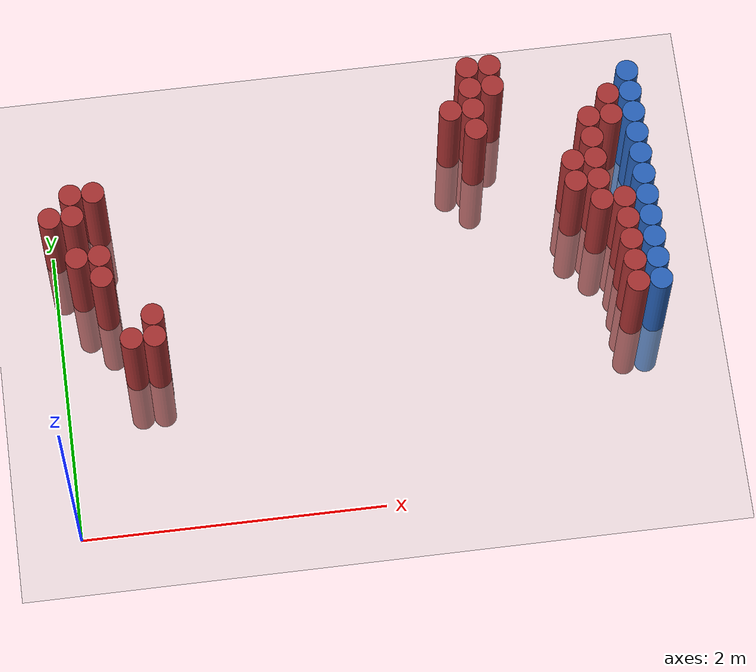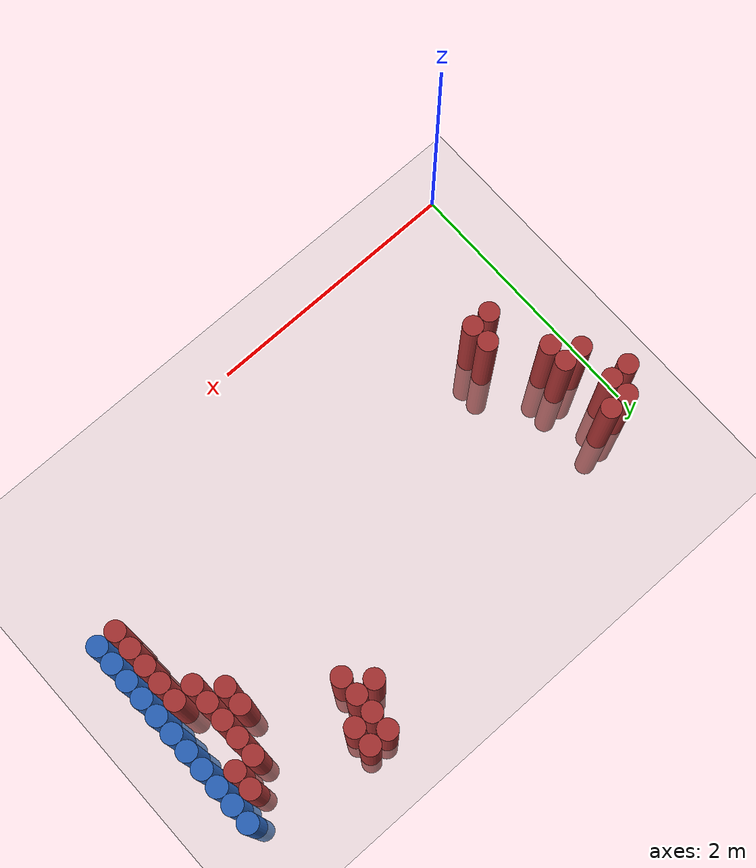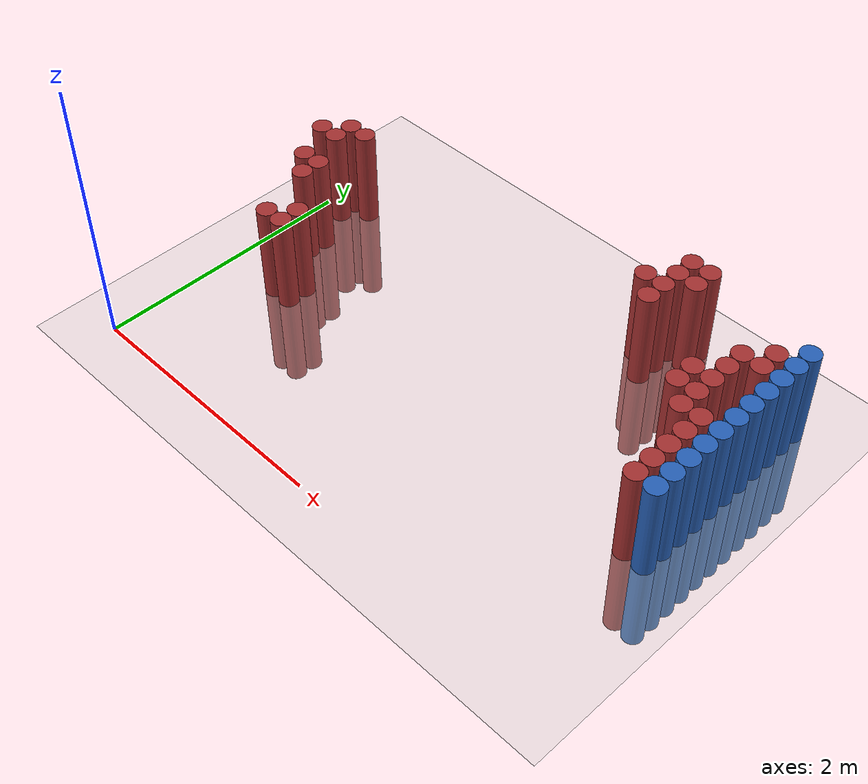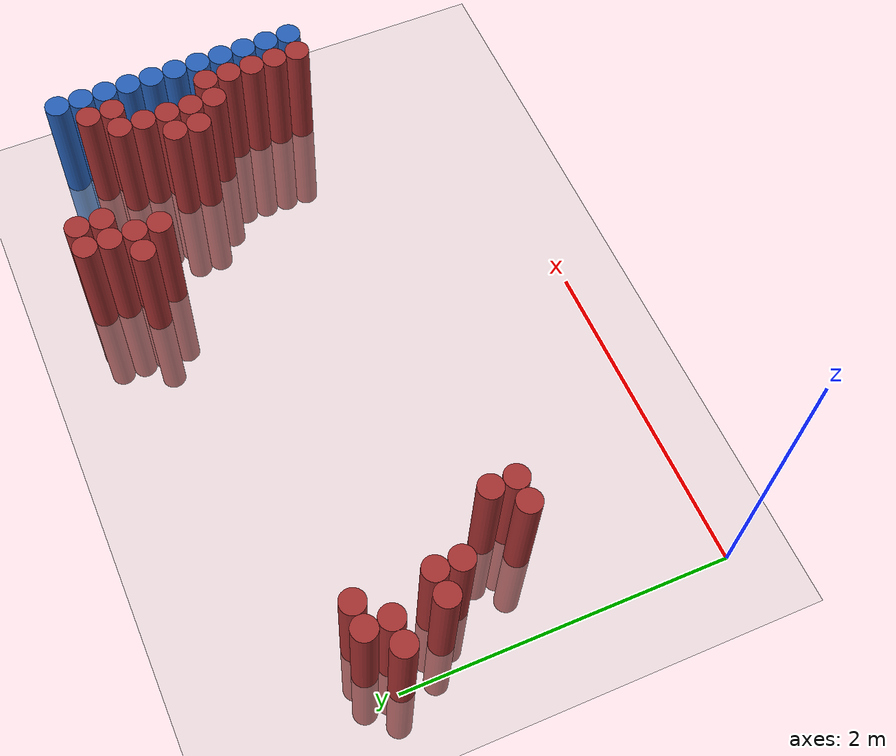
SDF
<sdf version="1.6">
 <world name="default">
  <model name="ground_plane">
   <static>1</static>
   <link name="link">
    <collision name="collision">
     <geometry><plane><normal>0 0 1</normal><size>100 100</size></plane></geometry>
     <surface><friction><ode><mu>100</mu><mu2>50</mu2></ode></friction></surface>
    </collision>
    <visual name="visual">
     <cast_shadows>0</cast_shadows>
     <geometry><plane><normal>0 0 1</normal><size>100 100</size></plane></geometry>
     <material>
      <script><uri>file://media/materials/scripts/gazebo.material</uri><name>Gazebo/Grey</name></script>
     </material>
    </visual>
   </link>
  </model>
  <model name="unit_cylinder_128">
   <static>1</static>
   <pose>3.925000 1.075000 0.000000 0.000000 0.000000 0.000000</pose>
   <link name="link">
    <inertial>
     <mass>1</mass>
     <inertia><ixx>0.145833</ixx><ixy>0</ixy><ixz>0</ixz><iyy>0.145833</iyy><iyz>0</iyz><izz>0.125</izz></inertia>
    </inertial>
    <collision name="collision">
     <geometry><cylinder><radius>0.075000</radius><length>1.5</length></cylinder></geometry>
    </collision>
    <visual name="visual">
     <geometry><cylinder><radius>0.075000</radius><length>1.5</length></cylinder></geometry>
     <material>
      <ambient>0.152000 0.379000 0.720000 1</ambient>
      <diffuse>0.152000 0.379000 0.720000 1</diffuse>
     </material>
     <material>
      <script><name>Gazebo/Grey</name><uri>file://media/materials/scripts/gazebo.material</uri></script>
     </material>
    </visual>
   </link>
  </model>
  <model name="unit_cylinder_130">
   <static>1</static>
   <pose>3.925000 1.225000 0.000000 0.000000 0.000000 0.000000</pose>
   <link name="link">
    <inertial>
     <mass>1</mass>
     <inertia><ixx>0.145833</ixx><ixy>0</ixy><ixz>0</ixz><iyy>0.145833</iyy><iyz>0</iyz><izz>0.125</izz></inertia>
    </inertial>
    <collision name="collision">
     <geometry><cylinder><radius>0.075000</radius><length>1.5</length></cylinder></geometry>
    </collision>
    <visual name="visual">
     <geometry><cylinder><radius>0.075000</radius><length>1.5</length></cylinder></geometry>
     <material>
      <ambient>0.152000 0.379000 0.720000 1</ambient>
      <diffuse>0.152000 0.379000 0.720000 1</diffuse>
     </material>
     <material>
      <script><name>Gazebo/Grey</name><uri>file://media/materials/scripts/gazebo.material</uri></script>
     </material>
    </visual>
   </link>
  </model>
  <model name="unit_cylinder_132">
   <static>1</static>
   <pose>3.925000 1.375000 0.000000 0.000000 0.000000 0.000000</pose>
   <link name="link">
    <inertial>
     <mass>1</mass>
     <inertia><ixx>0.145833</ixx><ixy>0</ixy><ixz>0</ixz><iyy>0.145833</iyy><iyz>0</iyz><izz>0.125</izz></inertia>
    </inertial>
    <collision name="collision">
     <geometry><cylinder><radius>0.075000</radius><length>1.5</length></cylinder></geometry>
    </collision>
    <visual name="visual">
     <geometry><cylinder><radius>0.075000</radius><length>1.5</length></cylinder></geometry>
     <material>
      <ambient>0.152000 0.379000 0.720000 1</ambient>
      <diffuse>0.152000 0.379000 0.720000 1</diffuse>
     </material>
     <material>
      <script><name>Gazebo/Grey</name><uri>file://media/materials/scripts/gazebo.material</uri></script>
     </material>
    </visual>
   </link>
  </model>
  <model name="unit_cylinder_134">
   <static>1</static>
   <pose>3.925000 1.525000 0.000000 0.000000 0.000000 0.000000</pose>
   <link name="link">
    <inertial>
     <mass>1</mass>
     <inertia><ixx>0.145833</ixx><ixy>0</ixy><ixz>0</ixz><iyy>0.145833</iyy><iyz>0</iyz><izz>0.125</izz></inertia>
    </inertial>
    <collision name="collision">
     <geometry><cylinder><radius>0.075000</radius><length>1.5</length></cylinder></geometry>
    </collision>
    <visual name="visual">
     <geometry><cylinder><radius>0.075000</radius><length>1.5</length></cylinder></geometry>
     <material>
      <ambient>0.152000 0.379000 0.720000 1</ambient>
      <diffuse>0.152000 0.379000 0.720000 1</diffuse>
     </material>
     <material>
      <script><name>Gazebo/Grey</name><uri>file://media/materials/scripts/gazebo.material</uri></script>
     </material>
    </visual>
   </link>
  </model>
  <model name="unit_cylinder_136">
   <static>1</static>
   <pose>3.925000 1.675000 0.000000 0.000000 0.000000 0.000000</pose>
   <link name="link">
    <inertial>
     <mass>1</mass>
     <inertia><ixx>0.145833</ixx><ixy>0</ixy><ixz>0</ixz><iyy>0.145833</iyy><iyz>0</iyz><izz>0.125</izz></inertia>
    </inertial>
    <collision name="collision">
     <geometry><cylinder><radius>0.075000</radius><length>1.5</length></cylinder></geometry>
    </collision>
    <visual name="visual">
     <geometry><cylinder><radius>0.075000</radius><length>1.5</length></cylinder></geometry>
     <material>
      <ambient>0.152000 0.379000 0.720000 1</ambient>
      <diffuse>0.152000 0.379000 0.720000 1</diffuse>
     </material>
     <material>
      <script><name>Gazebo/Grey</name><uri>file://media/materials/scripts/gazebo.material</uri></script>
     </material>
    </visual>
   </link>
  </model>
  <model name="unit_cylinder_138">
   <static>1</static>
   <pose>3.925000 1.825000 0.000000 0.000000 0.000000 0.000000</pose>
   <link name="link">
    <inertial>
     <mass>1</mass>
     <inertia><ixx>0.145833</ixx><ixy>0</ixy><ixz>0</ixz><iyy>0.145833</iyy><iyz>0</iyz><izz>0.125</izz></inertia>
    </inertial>
    <collision name="collision">
     <geometry><cylinder><radius>0.075000</radius><length>1.5</length></cylinder></geometry>
    </collision>
    <visual name="visual">
     <geometry><cylinder><radius>0.075000</radius><length>1.5</length></cylinder></geometry>
     <material>
      <ambient>0.152000 0.379000 0.720000 1</ambient>
      <diffuse>0.152000 0.379000 0.720000 1</diffuse>
     </material>
     <material>
      <script><name>Gazebo/Grey</name><uri>file://media/materials/scripts/gazebo.material</uri></script>
     </material>
    </visual>
   </link>
  </model>
  <model name="unit_cylinder_140">
   <static>1</static>
   <pose>3.925000 1.975000 0.000000 0.000000 0.000000 0.000000</pose>
   <link name="link">
    <inertial>
     <mass>1</mass>
     <inertia><ixx>0.145833</ixx><ixy>0</ixy><ixz>0</ixz><iyy>0.145833</iyy><iyz>0</iyz><izz>0.125</izz></inertia>
    </inertial>
    <collision name="collision">
     <geometry><cylinder><radius>0.075000</radius><length>1.5</length></cylinder></geometry>
    </collision>
    <visual name="visual">
     <geometry><cylinder><radius>0.075000</radius><length>1.5</length></cylinder></geometry>
     <material>
      <ambient>0.152000 0.379000 0.720000 1</ambient>
      <diffuse>0.152000 0.379000 0.720000 1</diffuse>
     </material>
     <material>
      <script><name>Gazebo/Grey</name><uri>file://media/materials/scripts/gazebo.material</uri></script>
     </material>
    </visual>
   </link>
  </model>
  <model name="unit_cylinder_142">
   <static>1</static>
   <pose>3.925000 2.125000 0.000000 0.000000 0.000000 0.000000</pose>
   <link name="link">
    <inertial>
     <mass>1</mass>
     <inertia><ixx>0.145833</ixx><ixy>0</ixy><ixz>0</ixz><iyy>0.145833</iyy><iyz>0</iyz><izz>0.125</izz></inertia>
    </inertial>
    <collision name="collision">
     <geometry><cylinder><radius>0.075000</radius><length>1.5</length></cylinder></geometry>
    </collision>
    <visual name="visual">
     <geometry><cylinder><radius>0.075000</radius><length>1.5</length></cylinder></geometry>
     <material>
      <ambient>0.152000 0.379000 0.720000 1</ambient>
      <diffuse>0.152000 0.379000 0.720000 1</diffuse>
     </material>
     <material>
      <script><name>Gazebo/Grey</name><uri>file://media/materials/scripts/gazebo.material</uri></script>
     </material>
    </visual>
   </link>
  </model>
  <model name="unit_cylinder_144">
   <static>1</static>
   <pose>3.925000 2.275000 0.000000 0.000000 0.000000 0.000000</pose>
   <link name="link">
    <inertial>
     <mass>1</mass>
     <inertia><ixx>0.145833</ixx><ixy>0</ixy><ixz>0</ixz><iyy>0.145833</iyy><iyz>0</iyz><izz>0.125</izz></inertia>
    </inertial>
    <collision name="collision">
     <geometry><cylinder><radius>0.075000</radius><length>1.5</length></cylinder></geometry>
    </collision>
    <visual name="visual">
     <geometry><cylinder><radius>0.075000</radius><length>1.5</length></cylinder></geometry>
     <material>
      <ambient>0.152000 0.379000 0.720000 1</ambient>
      <diffuse>0.152000 0.379000 0.720000 1</diffuse>
     </material>
     <material>
      <script><name>Gazebo/Grey</name><uri>file://media/materials/scripts/gazebo.material</uri></script>
     </material>
    </visual>
   </link>
  </model>
  <model name="unit_cylinder_146">
   <static>1</static>
   <pose>3.925000 2.425000 0.000000 0.000000 0.000000 0.000000</pose>
   <link name="link">
    <inertial>
     <mass>1</mass>
     <inertia><ixx>0.145833</ixx><ixy>0</ixy><ixz>0</ixz><iyy>0.145833</iyy><iyz>0</iyz><izz>0.125</izz></inertia>
    </inertial>
    <collision name="collision">
     <geometry><cylinder><radius>0.075000</radius><length>1.5</length></cylinder></geometry>
    </collision>
    <visual name="visual">
     <geometry><cylinder><radius>0.075000</radius><length>1.5</length></cylinder></geometry>
     <material>
      <ambient>0.152000 0.379000 0.720000 1</ambient>
      <diffuse>0.152000 0.379000 0.720000 1</diffuse>
     </material>
     <material>
      <script><name>Gazebo/Grey</name><uri>file://media/materials/scripts/gazebo.material</uri></script>
     </material>
    </visual>
   </link>
  </model>
  <model name="unit_cylinder_148">
   <static>1</static>
   <pose>3.925000 2.575000 0.000000 0.000000 0.000000 0.000000</pose>
   <link name="link">
    <inertial>
     <mass>1</mass>
     <inertia><ixx>0.145833</ixx><ixy>0</ixy><ixz>0</ixz><iyy>0.145833</iyy><iyz>0</iyz><izz>0.125</izz></inertia>
    </inertial>
    <collision name="collision">
     <geometry><cylinder><radius>0.075000</radius><length>1.5</length></cylinder></geometry>
    </collision>
    <visual name="visual">
     <geometry><cylinder><radius>0.075000</radius><length>1.5</length></cylinder></geometry>
     <material>
      <ambient>0.152000 0.379000 0.720000 1</ambient>
      <diffuse>0.152000 0.379000 0.720000 1</diffuse>
     </material>
     <material>
      <script><name>Gazebo/Grey</name><uri>file://media/materials/scripts/gazebo.material</uri></script>
     </material>
    </visual>
   </link>
  </model>
  <model name="unit_cylinder_444">
   <static>1</static>
   <pose>0.025000 1.975000 0.000000 0.000000 0.000000 0.000000</pose>
   <link name="link">
    <inertial>
     <mass>1</mass>
     <inertia><ixx>0.145833</ixx><ixy>0</ixy><ixz>0</ixz><iyy>0.145833</iyy><iyz>0</iyz><izz>0.125</izz></inertia>
    </inertial>
    <collision name="collision">
     <geometry><cylinder><radius>0.075000</radius><length>1.5</length></cylinder></geometry>
    </collision>
    <visual name="visual">
     <geometry><cylinder><radius>0.075000</radius><length>1.5</length></cylinder></geometry>
     <material>
      <ambient>0.648000 0.192000 0.192000 1</ambient>
      <diffuse>0.648000 0.192000 0.192000 1</diffuse>
     </material>
     <material>
      <script><name>Gazebo/Grey</name><uri>file://media/materials/scripts/gazebo.material</uri></script>
     </material>
    </visual>
   </link>
  </model>
  <model name="unit_cylinder_450">
   <static>1</static>
   <pose>0.175000 1.675000 0.000000 0.000000 0.000000 0.000000</pose>
   <link name="link">
    <inertial>
     <mass>1</mass>
     <inertia><ixx>0.145833</ixx><ixy>0</ixy><ixz>0</ixz><iyy>0.145833</iyy><iyz>0</iyz><izz>0.125</izz></inertia>
    </inertial>
    <collision name="collision">
     <geometry><cylinder><radius>0.075000</radius><length>1.5</length></cylinder></geometry>
    </collision>
    <visual name="visual">
     <geometry><cylinder><radius>0.075000</radius><length>1.5</length></cylinder></geometry>
     <material>
      <ambient>0.648000 0.192000 0.192000 1</ambient>
      <diffuse>0.648000 0.192000 0.192000 1</diffuse>
     </material>
     <material>
      <script><name>Gazebo/Grey</name><uri>file://media/materials/scripts/gazebo.material</uri></script>
     </material>
    </visual>
   </link>
  </model>
  <model name="unit_cylinder_451">
   <static>1</static>
   <pose>0.175000 1.975000 0.000000 0.000000 0.000000 0.000000</pose>
   <link name="link">
    <inertial>
     <mass>1</mass>
     <inertia><ixx>0.145833</ixx><ixy>0</ixy><ixz>0</ixz><iyy>0.145833</iyy><iyz>0</iyz><izz>0.125</izz></inertia>
    </inertial>
    <collision name="collision">
     <geometry><cylinder><radius>0.075000</radius><length>1.5</length></cylinder></geometry>
    </collision>
    <visual name="visual">
     <geometry><cylinder><radius>0.075000</radius><length>1.5</length></cylinder></geometry>
     <material>
      <ambient>0.648000 0.192000 0.192000 1</ambient>
      <diffuse>0.648000 0.192000 0.192000 1</diffuse>
     </material>
     <material>
      <script><name>Gazebo/Grey</name><uri>file://media/materials/scripts/gazebo.material</uri></script>
     </material>
    </visual>
   </link>
  </model>
  <model name="unit_cylinder_452">
   <static>1</static>
   <pose>0.175000 2.125000 0.000000 0.000000 0.000000 0.000000</pose>
   <link name="link">
    <inertial>
     <mass>1</mass>
     <inertia><ixx>0.145833</ixx><ixy>0</ixy><ixz>0</ixz><iyy>0.145833</iyy><iyz>0</iyz><izz>0.125</izz></inertia>
    </inertial>
    <collision name="collision">
     <geometry><cylinder><radius>0.075000</radius><length>1.5</length></cylinder></geometry>
    </collision>
    <visual name="visual">
     <geometry><cylinder><radius>0.075000</radius><length>1.5</length></cylinder></geometry>
     <material>
      <ambient>0.648000 0.192000 0.192000 1</ambient>
      <diffuse>0.648000 0.192000 0.192000 1</diffuse>
     </material>
     <material>
      <script><name>Gazebo/Grey</name><uri>file://media/materials/scripts/gazebo.material</uri></script>
     </material>
    </visual>
   </link>
  </model>
  <model name="unit_cylinder_454">
   <static>1</static>
   <pose>0.325000 1.525000 0.000000 0.000000 0.000000 0.000000</pose>
   <link name="link">
    <inertial>
     <mass>1</mass>
     <inertia><ixx>0.145833</ixx><ixy>0</ixy><ixz>0</ixz><iyy>0.145833</iyy><iyz>0</iyz><izz>0.125</izz></inertia>
    </inertial>
    <collision name="collision">
     <geometry><cylinder><radius>0.075000</radius><length>1.5</length></cylinder></geometry>
    </collision>
    <visual name="visual">
     <geometry><cylinder><radius>0.075000</radius><length>1.5</length></cylinder></geometry>
     <material>
      <ambient>0.648000 0.192000 0.192000 1</ambient>
      <diffuse>0.648000 0.192000 0.192000 1</diffuse>
     </material>
     <material>
      <script><name>Gazebo/Grey</name><uri>file://media/materials/scripts/gazebo.material</uri></script>
     </material>
    </visual>
   </link>
  </model>
  <model name="unit_cylinder_455">
   <static>1</static>
   <pose>0.325000 1.675000 0.000000 0.000000 0.000000 0.000000</pose>
   <link name="link">
    <inertial>
     <mass>1</mass>
     <inertia><ixx>0.145833</ixx><ixy>0</ixy><ixz>0</ixz><iyy>0.145833</iyy><iyz>0</iyz><izz>0.125</izz></inertia>
    </inertial>
    <collision name="collision">
     <geometry><cylinder><radius>0.075000</radius><length>1.5</length></cylinder></geometry>
    </collision>
    <visual name="visual">
     <geometry><cylinder><radius>0.075000</radius><length>1.5</length></cylinder></geometry>
     <material>
      <ambient>0.648000 0.192000 0.192000 1</ambient>
      <diffuse>0.648000 0.192000 0.192000 1</diffuse>
     </material>
     <material>
      <script><name>Gazebo/Grey</name><uri>file://media/materials/scripts/gazebo.material</uri></script>
     </material>
    </visual>
   </link>
  </model>
  <model name="unit_cylinder_456">
   <static>1</static>
   <pose>0.325000 2.125000 0.000000 0.000000 0.000000 0.000000</pose>
   <link name="link">
    <inertial>
     <mass>1</mass>
     <inertia><ixx>0.145833</ixx><ixy>0</ixy><ixz>0</ixz><iyy>0.145833</iyy><iyz>0</iyz><izz>0.125</izz></inertia>
    </inertial>
    <collision name="collision">
     <geometry><cylinder><radius>0.075000</radius><length>1.5</length></cylinder></geometry>
    </collision>
    <visual name="visual">
     <geometry><cylinder><radius>0.075000</radius><length>1.5</length></cylinder></geometry>
     <material>
      <ambient>0.648000 0.192000 0.192000 1</ambient>
      <diffuse>0.648000 0.192000 0.192000 1</diffuse>
     </material>
     <material>
      <script><name>Gazebo/Grey</name><uri>file://media/materials/scripts/gazebo.material</uri></script>
     </material>
    </visual>
   </link>
  </model>
  <model name="unit_cylinder_461">
   <static>1</static>
   <pose>0.475000 1.075000 0.000000 0.000000 0.000000 0.000000</pose>
   <link name="link">
    <inertial>
     <mass>1</mass>
     <inertia><ixx>0.145833</ixx><ixy>0</ixy><ixz>0</ixz><iyy>0.145833</iyy><iyz>0</iyz><izz>0.125</izz></inertia>
    </inertial>
    <collision name="collision">
     <geometry><cylinder><radius>0.075000</radius><length>1.5</length></cylinder></geometry>
    </collision>
    <visual name="visual">
     <geometry><cylinder><radius>0.075000</radius><length>1.5</length></cylinder></geometry>
     <material>
      <ambient>0.648000 0.192000 0.192000 1</ambient>
      <diffuse>0.648000 0.192000 0.192000 1</diffuse>
     </material>
     <material>
      <script><name>Gazebo/Grey</name><uri>file://media/materials/scripts/gazebo.material</uri></script>
     </material>
    </visual>
   </link>
  </model>
  <model name="unit_cylinder_468">
   <static>1</static>
   <pose>0.625000 1.075000 0.000000 0.000000 0.000000 0.000000</pose>
   <link name="link">
    <inertial>
     <mass>1</mass>
     <inertia><ixx>0.145833</ixx><ixy>0</ixy><ixz>0</ixz><iyy>0.145833</iyy><iyz>0</iyz><izz>0.125</izz></inertia>
    </inertial>
    <collision name="collision">
     <geometry><cylinder><radius>0.075000</radius><length>1.5</length></cylinder></geometry>
    </collision>
    <visual name="visual">
     <geometry><cylinder><radius>0.075000</radius><length>1.5</length></cylinder></geometry>
     <material>
      <ambient>0.648000 0.192000 0.192000 1</ambient>
      <diffuse>0.648000 0.192000 0.192000 1</diffuse>
     </material>
     <material>
      <script><name>Gazebo/Grey</name><uri>file://media/materials/scripts/gazebo.material</uri></script>
     </material>
    </visual>
   </link>
  </model>
  <model name="unit_cylinder_469">
   <static>1</static>
   <pose>0.625000 1.225000 0.000000 0.000000 0.000000 0.000000</pose>
   <link name="link">
    <inertial>
     <mass>1</mass>
     <inertia><ixx>0.145833</ixx><ixy>0</ixy><ixz>0</ixz><iyy>0.145833</iyy><iyz>0</iyz><izz>0.125</izz></inertia>
    </inertial>
    <collision name="collision">
     <geometry><cylinder><radius>0.075000</radius><length>1.5</length></cylinder></geometry>
    </collision>
    <visual name="visual">
     <geometry><cylinder><radius>0.075000</radius><length>1.5</length></cylinder></geometry>
     <material>
      <ambient>0.648000 0.192000 0.192000 1</ambient>
      <diffuse>0.648000 0.192000 0.192000 1</diffuse>
     </material>
     <material>
      <script><name>Gazebo/Grey</name><uri>file://media/materials/scripts/gazebo.material</uri></script>
     </material>
    </visual>
   </link>
  </model>
  <model name="unit_cylinder_524">
   <static>1</static>
   <pose>2.725000 2.425000 0.000000 0.000000 0.000000 0.000000</pose>
   <link name="link">
    <inertial>
     <mass>1</mass>
     <inertia><ixx>0.145833</ixx><ixy>0</ixy><ixz>0</ixz><iyy>0.145833</iyy><iyz>0</iyz><izz>0.125</izz></inertia>
    </inertial>
    <collision name="collision">
     <geometry><cylinder><radius>0.075000</radius><length>1.5</length></cylinder></geometry>
    </collision>
    <visual name="visual">
     <geometry><cylinder><radius>0.075000</radius><length>1.5</length></cylinder></geometry>
     <material>
      <ambient>0.648000 0.192000 0.192000 1</ambient>
      <diffuse>0.648000 0.192000 0.192000 1</diffuse>
     </material>
     <material>
      <script><name>Gazebo/Grey</name><uri>file://media/materials/scripts/gazebo.material</uri></script>
     </material>
    </visual>
   </link>
  </model>
  <model name="unit_cylinder_531">
   <static>1</static>
   <pose>2.875000 2.275000 0.000000 0.000000 0.000000 0.000000</pose>
   <link name="link">
    <inertial>
     <mass>1</mass>
     <inertia><ixx>0.145833</ixx><ixy>0</ixy><ixz>0</ixz><iyy>0.145833</iyy><iyz>0</iyz><izz>0.125</izz></inertia>
    </inertial>
    <collision name="collision">
     <geometry><cylinder><radius>0.075000</radius><length>1.5</length></cylinder></geometry>
    </collision>
    <visual name="visual">
     <geometry><cylinder><radius>0.075000</radius><length>1.5</length></cylinder></geometry>
     <material>
      <ambient>0.648000 0.192000 0.192000 1</ambient>
      <diffuse>0.648000 0.192000 0.192000 1</diffuse>
     </material>
     <material>
      <script><name>Gazebo/Grey</name><uri>file://media/materials/scripts/gazebo.material</uri></script>
     </material>
    </visual>
   </link>
  </model>
  <model name="unit_cylinder_532">
   <static>1</static>
   <pose>2.875000 2.425000 0.000000 0.000000 0.000000 0.000000</pose>
   <link name="link">
    <inertial>
     <mass>1</mass>
     <inertia><ixx>0.145833</ixx><ixy>0</ixy><ixz>0</ixz><iyy>0.145833</iyy><iyz>0</iyz><izz>0.125</izz></inertia>
    </inertial>
    <collision name="collision">
     <geometry><cylinder><radius>0.075000</radius><length>1.5</length></cylinder></geometry>
    </collision>
    <visual name="visual">
     <geometry><cylinder><radius>0.075000</radius><length>1.5</length></cylinder></geometry>
     <material>
      <ambient>0.648000 0.192000 0.192000 1</ambient>
      <diffuse>0.648000 0.192000 0.192000 1</diffuse>
     </material>
     <material>
      <script><name>Gazebo/Grey</name><uri>file://media/materials/scripts/gazebo.material</uri></script>
     </material>
    </visual>
   </link>
  </model>
  <model name="unit_cylinder_533">
   <static>1</static>
   <pose>2.875000 2.575000 0.000000 0.000000 0.000000 0.000000</pose>
   <link name="link">
    <inertial>
     <mass>1</mass>
     <inertia><ixx>0.145833</ixx><ixy>0</ixy><ixz>0</ixz><iyy>0.145833</iyy><iyz>0</iyz><izz>0.125</izz></inertia>
    </inertial>
    <collision name="collision">
     <geometry><cylinder><radius>0.075000</radius><length>1.5</length></cylinder></geometry>
    </collision>
    <visual name="visual">
     <geometry><cylinder><radius>0.075000</radius><length>1.5</length></cylinder></geometry>
     <material>
      <ambient>0.648000 0.192000 0.192000 1</ambient>
      <diffuse>0.648000 0.192000 0.192000 1</diffuse>
     </material>
     <material>
      <script><name>Gazebo/Grey</name><uri>file://media/materials/scripts/gazebo.material</uri></script>
     </material>
    </visual>
   </link>
  </model>
  <model name="unit_cylinder_534">
   <static>1</static>
   <pose>2.875000 2.725000 0.000000 0.000000 0.000000 0.000000</pose>
   <link name="link">
    <inertial>
     <mass>1</mass>
     <inertia><ixx>0.145833</ixx><ixy>0</ixy><ixz>0</ixz><iyy>0.145833</iyy><iyz>0</iyz><izz>0.125</izz></inertia>
    </inertial>
    <collision name="collision">
     <geometry><cylinder><radius>0.075000</radius><length>1.5</length></cylinder></geometry>
    </collision>
    <visual name="visual">
     <geometry><cylinder><radius>0.075000</radius><length>1.5</length></cylinder></geometry>
     <material>
      <ambient>0.648000 0.192000 0.192000 1</ambient>
      <diffuse>0.648000 0.192000 0.192000 1</diffuse>
     </material>
     <material>
      <script><name>Gazebo/Grey</name><uri>file://media/materials/scripts/gazebo.material</uri></script>
     </material>
    </visual>
   </link>
  </model>
  <model name="unit_cylinder_537">
   <static>1</static>
   <pose>3.025000 2.575000 0.000000 0.000000 0.000000 0.000000</pose>
   <link name="link">
    <inertial>
     <mass>1</mass>
     <inertia><ixx>0.145833</ixx><ixy>0</ixy><ixz>0</ixz><iyy>0.145833</iyy><iyz>0</iyz><izz>0.125</izz></inertia>
    </inertial>
    <collision name="collision">
     <geometry><cylinder><radius>0.075000</radius><length>1.5</length></cylinder></geometry>
    </collision>
    <visual name="visual">
     <geometry><cylinder><radius>0.075000</radius><length>1.5</length></cylinder></geometry>
     <material>
      <ambient>0.648000 0.192000 0.192000 1</ambient>
      <diffuse>0.648000 0.192000 0.192000 1</diffuse>
     </material>
     <material>
      <script><name>Gazebo/Grey</name><uri>file://media/materials/scripts/gazebo.material</uri></script>
     </material>
    </visual>
   </link>
  </model>
  <model name="unit_cylinder_538">
   <static>1</static>
   <pose>3.025000 2.725000 0.000000 0.000000 0.000000 0.000000</pose>
   <link name="link">
    <inertial>
     <mass>1</mass>
     <inertia><ixx>0.145833</ixx><ixy>0</ixy><ixz>0</ixz><iyy>0.145833</iyy><iyz>0</iyz><izz>0.125</izz></inertia>
    </inertial>
    <collision name="collision">
     <geometry><cylinder><radius>0.075000</radius><length>1.5</length></cylinder></geometry>
    </collision>
    <visual name="visual">
     <geometry><cylinder><radius>0.075000</radius><length>1.5</length></cylinder></geometry>
     <material>
      <ambient>0.648000 0.192000 0.192000 1</ambient>
      <diffuse>0.648000 0.192000 0.192000 1</diffuse>
     </material>
     <material>
      <script><name>Gazebo/Grey</name><uri>file://media/materials/scripts/gazebo.material</uri></script>
     </material>
    </visual>
   </link>
  </model>
  <model name="unit_cylinder_546">
   <static>1</static>
   <pose>3.475000 1.825000 0.000000 0.000000 0.000000 0.000000</pose>
   <link name="link">
    <inertial>
     <mass>1</mass>
     <inertia><ixx>0.145833</ixx><ixy>0</ixy><ixz>0</ixz><iyy>0.145833</iyy><iyz>0</iyz><izz>0.125</izz></inertia>
    </inertial>
    <collision name="collision">
     <geometry><cylinder><radius>0.075000</radius><length>1.5</length></cylinder></geometry>
    </collision>
    <visual name="visual">
     <geometry><cylinder><radius>0.075000</radius><length>1.5</length></cylinder></geometry>
     <material>
      <ambient>0.648000 0.192000 0.192000 1</ambient>
      <diffuse>0.648000 0.192000 0.192000 1</diffuse>
     </material>
     <material>
      <script><name>Gazebo/Grey</name><uri>file://media/materials/scripts/gazebo.material</uri></script>
     </material>
    </visual>
   </link>
  </model>
  <model name="unit_cylinder_547">
   <static>1</static>
   <pose>3.475000 1.975000 0.000000 0.000000 0.000000 0.000000</pose>
   <link name="link">
    <inertial>
     <mass>1</mass>
     <inertia><ixx>0.145833</ixx><ixy>0</ixy><ixz>0</ixz><iyy>0.145833</iyy><iyz>0</iyz><izz>0.125</izz></inertia>
    </inertial>
    <collision name="collision">
     <geometry><cylinder><radius>0.075000</radius><length>1.5</length></cylinder></geometry>
    </collision>
    <visual name="visual">
     <geometry><cylinder><radius>0.075000</radius><length>1.5</length></cylinder></geometry>
     <material>
      <ambient>0.648000 0.192000 0.192000 1</ambient>
      <diffuse>0.648000 0.192000 0.192000 1</diffuse>
     </material>
     <material>
      <script><name>Gazebo/Grey</name><uri>file://media/materials/scripts/gazebo.material</uri></script>
     </material>
    </visual>
   </link>
  </model>
  <model name="unit_cylinder_556">
   <static>1</static>
   <pose>3.625000 1.675000 0.000000 0.000000 0.000000 0.000000</pose>
   <link name="link">
    <inertial>
     <mass>1</mass>
     <inertia><ixx>0.145833</ixx><ixy>0</ixy><ixz>0</ixz><iyy>0.145833</iyy><iyz>0</iyz><izz>0.125</izz></inertia>
    </inertial>
    <collision name="collision">
     <geometry><cylinder><radius>0.075000</radius><length>1.5</length></cylinder></geometry>
    </collision>
    <visual name="visual">
     <geometry><cylinder><radius>0.075000</radius><length>1.5</length></cylinder></geometry>
     <material>
      <ambient>0.648000 0.192000 0.192000 1</ambient>
      <diffuse>0.648000 0.192000 0.192000 1</diffuse>
     </material>
     <material>
      <script><name>Gazebo/Grey</name><uri>file://media/materials/scripts/gazebo.material</uri></script>
     </material>
    </visual>
   </link>
  </model>
  <model name="unit_cylinder_557">
   <static>1</static>
   <pose>3.625000 1.825000 0.000000 0.000000 0.000000 0.000000</pose>
   <link name="link">
    <inertial>
     <mass>1</mass>
     <inertia><ixx>0.145833</ixx><ixy>0</ixy><ixz>0</ixz><iyy>0.145833</iyy><iyz>0</iyz><izz>0.125</izz></inertia>
    </inertial>
    <collision name="collision">
     <geometry><cylinder><radius>0.075000</radius><length>1.5</length></cylinder></geometry>
    </collision>
    <visual name="visual">
     <geometry><cylinder><radius>0.075000</radius><length>1.5</length></cylinder></geometry>
     <material>
      <ambient>0.648000 0.192000 0.192000 1</ambient>
      <diffuse>0.648000 0.192000 0.192000 1</diffuse>
     </material>
     <material>
      <script><name>Gazebo/Grey</name><uri>file://media/materials/scripts/gazebo.material</uri></script>
     </material>
    </visual>
   </link>
  </model>
  <model name="unit_cylinder_558">
   <static>1</static>
   <pose>3.625000 1.975000 0.000000 0.000000 0.000000 0.000000</pose>
   <link name="link">
    <inertial>
     <mass>1</mass>
     <inertia><ixx>0.145833</ixx><ixy>0</ixy><ixz>0</ixz><iyy>0.145833</iyy><iyz>0</iyz><izz>0.125</izz></inertia>
    </inertial>
    <collision name="collision">
     <geometry><cylinder><radius>0.075000</radius><length>1.5</length></cylinder></geometry>
    </collision>
    <visual name="visual">
     <geometry><cylinder><radius>0.075000</radius><length>1.5</length></cylinder></geometry>
     <material>
      <ambient>0.648000 0.192000 0.192000 1</ambient>
      <diffuse>0.648000 0.192000 0.192000 1</diffuse>
     </material>
     <material>
      <script><name>Gazebo/Grey</name><uri>file://media/materials/scripts/gazebo.material</uri></script>
     </material>
    </visual>
   </link>
  </model>
  <model name="unit_cylinder_559">
   <static>1</static>
   <pose>3.625000 2.125000 0.000000 0.000000 0.000000 0.000000</pose>
   <link name="link">
    <inertial>
     <mass>1</mass>
     <inertia><ixx>0.145833</ixx><ixy>0</ixy><ixz>0</ixz><iyy>0.145833</iyy><iyz>0</iyz><izz>0.125</izz></inertia>
    </inertial>
    <collision name="collision">
     <geometry><cylinder><radius>0.075000</radius><length>1.5</length></cylinder></geometry>
    </collision>
    <visual name="visual">
     <geometry><cylinder><radius>0.075000</radius><length>1.5</length></cylinder></geometry>
     <material>
      <ambient>0.648000 0.192000 0.192000 1</ambient>
      <diffuse>0.648000 0.192000 0.192000 1</diffuse>
     </material>
     <material>
      <script><name>Gazebo/Grey</name><uri>file://media/materials/scripts/gazebo.material</uri></script>
     </material>
    </visual>
   </link>
  </model>
  <model name="unit_cylinder_560">
   <static>1</static>
   <pose>3.625000 2.275000 0.000000 0.000000 0.000000 0.000000</pose>
   <link name="link">
    <inertial>
     <mass>1</mass>
     <inertia><ixx>0.145833</ixx><ixy>0</ixy><ixz>0</ixz><iyy>0.145833</iyy><iyz>0</iyz><izz>0.125</izz></inertia>
    </inertial>
    <collision name="collision">
     <geometry><cylinder><radius>0.075000</radius><length>1.5</length></cylinder></geometry>
    </collision>
    <visual name="visual">
     <geometry><cylinder><radius>0.075000</radius><length>1.5</length></cylinder></geometry>
     <material>
      <ambient>0.648000 0.192000 0.192000 1</ambient>
      <diffuse>0.648000 0.192000 0.192000 1</diffuse>
     </material>
     <material>
      <script><name>Gazebo/Grey</name><uri>file://media/materials/scripts/gazebo.material</uri></script>
     </material>
    </visual>
   </link>
  </model>
  <model name="unit_cylinder_576">
   <static>1</static>
   <pose>3.775000 1.075000 0.000000 0.000000 0.000000 0.000000</pose>
   <link name="link">
    <inertial>
     <mass>1</mass>
     <inertia><ixx>0.145833</ixx><ixy>0</ixy><ixz>0</ixz><iyy>0.145833</iyy><iyz>0</iyz><izz>0.125</izz></inertia>
    </inertial>
    <collision name="collision">
     <geometry><cylinder><radius>0.075000</radius><length>1.5</length></cylinder></geometry>
    </collision>
    <visual name="visual">
     <geometry><cylinder><radius>0.075000</radius><length>1.5</length></cylinder></geometry>
     <material>
      <ambient>0.648000 0.192000 0.192000 1</ambient>
      <diffuse>0.648000 0.192000 0.192000 1</diffuse>
     </material>
     <material>
      <script><name>Gazebo/Grey</name><uri>file://media/materials/scripts/gazebo.material</uri></script>
     </material>
    </visual>
   </link>
  </model>
  <model name="unit_cylinder_577">
   <static>1</static>
   <pose>3.775000 1.225000 0.000000 0.000000 0.000000 0.000000</pose>
   <link name="link">
    <inertial>
     <mass>1</mass>
     <inertia><ixx>0.145833</ixx><ixy>0</ixy><ixz>0</ixz><iyy>0.145833</iyy><iyz>0</iyz><izz>0.125</izz></inertia>
    </inertial>
    <collision name="collision">
     <geometry><cylinder><radius>0.075000</radius><length>1.5</length></cylinder></geometry>
    </collision>
    <visual name="visual">
     <geometry><cylinder><radius>0.075000</radius><length>1.5</length></cylinder></geometry>
     <material>
      <ambient>0.648000 0.192000 0.192000 1</ambient>
      <diffuse>0.648000 0.192000 0.192000 1</diffuse>
     </material>
     <material>
      <script><name>Gazebo/Grey</name><uri>file://media/materials/scripts/gazebo.material</uri></script>
     </material>
    </visual>
   </link>
  </model>
  <model name="unit_cylinder_578">
   <static>1</static>
   <pose>3.775000 1.375000 0.000000 0.000000 0.000000 0.000000</pose>
   <link name="link">
    <inertial>
     <mass>1</mass>
     <inertia><ixx>0.145833</ixx><ixy>0</ixy><ixz>0</ixz><iyy>0.145833</iyy><iyz>0</iyz><izz>0.125</izz></inertia>
    </inertial>
    <collision name="collision">
     <geometry><cylinder><radius>0.075000</radius><length>1.5</length></cylinder></geometry>
    </collision>
    <visual name="visual">
     <geometry><cylinder><radius>0.075000</radius><length>1.5</length></cylinder></geometry>
     <material>
      <ambient>0.648000 0.192000 0.192000 1</ambient>
      <diffuse>0.648000 0.192000 0.192000 1</diffuse>
     </material>
     <material>
      <script><name>Gazebo/Grey</name><uri>file://media/materials/scripts/gazebo.material</uri></script>
     </material>
    </visual>
   </link>
  </model>
  <model name="unit_cylinder_579">
   <static>1</static>
   <pose>3.775000 1.525000 0.000000 0.000000 0.000000 0.000000</pose>
   <link name="link">
    <inertial>
     <mass>1</mass>
     <inertia><ixx>0.145833</ixx><ixy>0</ixy><ixz>0</ixz><iyy>0.145833</iyy><iyz>0</iyz><izz>0.125</izz></inertia>
    </inertial>
    <collision name="collision">
     <geometry><cylinder><radius>0.075000</radius><length>1.5</length></cylinder></geometry>
    </collision>
    <visual name="visual">
     <geometry><cylinder><radius>0.075000</radius><length>1.5</length></cylinder></geometry>
     <material>
      <ambient>0.648000 0.192000 0.192000 1</ambient>
      <diffuse>0.648000 0.192000 0.192000 1</diffuse>
     </material>
     <material>
      <script><name>Gazebo/Grey</name><uri>file://media/materials/scripts/gazebo.material</uri></script>
     </material>
    </visual>
   </link>
  </model>
  <model name="unit_cylinder_580">
   <static>1</static>
   <pose>3.775000 1.675000 0.000000 0.000000 0.000000 0.000000</pose>
   <link name="link">
    <inertial>
     <mass>1</mass>
     <inertia><ixx>0.145833</ixx><ixy>0</ixy><ixz>0</ixz><iyy>0.145833</iyy><iyz>0</iyz><izz>0.125</izz></inertia>
    </inertial>
    <collision name="collision">
     <geometry><cylinder><radius>0.075000</radius><length>1.5</length></cylinder></geometry>
    </collision>
    <visual name="visual">
     <geometry><cylinder><radius>0.075000</radius><length>1.5</length></cylinder></geometry>
     <material>
      <ambient>0.648000 0.192000 0.192000 1</ambient>
      <diffuse>0.648000 0.192000 0.192000 1</diffuse>
     </material>
     <material>
      <script><name>Gazebo/Grey</name><uri>file://media/materials/scripts/gazebo.material</uri></script>
     </material>
    </visual>
   </link>
  </model>
  <model name="unit_cylinder_581">
   <static>1</static>
   <pose>3.775000 2.275000 0.000000 0.000000 0.000000 0.000000</pose>
   <link name="link">
    <inertial>
     <mass>1</mass>
     <inertia><ixx>0.145833</ixx><ixy>0</ixy><ixz>0</ixz><iyy>0.145833</iyy><iyz>0</iyz><izz>0.125</izz></inertia>
    </inertial>
    <collision name="collision">
     <geometry><cylinder><radius>0.075000</radius><length>1.5</length></cylinder></geometry>
    </collision>
    <visual name="visual">
     <geometry><cylinder><radius>0.075000</radius><length>1.5</length></cylinder></geometry>
     <material>
      <ambient>0.648000 0.192000 0.192000 1</ambient>
      <diffuse>0.648000 0.192000 0.192000 1</diffuse>
     </material>
     <material>
      <script><name>Gazebo/Grey</name><uri>file://media/materials/scripts/gazebo.material</uri></script>
     </material>
    </visual>
   </link>
  </model>
  <model name="unit_cylinder_582">
   <static>1</static>
   <pose>3.775000 2.425000 0.000000 0.000000 0.000000 0.000000</pose>
   <link name="link">
    <inertial>
     <mass>1</mass>
     <inertia><ixx>0.145833</ixx><ixy>0</ixy><ixz>0</ixz><iyy>0.145833</iyy><iyz>0</iyz><izz>0.125</izz></inertia>
    </inertial>
    <collision name="collision">
     <geometry><cylinder><radius>0.075000</radius><length>1.5</length></cylinder></geometry>
    </collision>
    <visual name="visual">
     <geometry><cylinder><radius>0.075000</radius><length>1.5</length></cylinder></geometry>
     <material>
      <ambient>0.648000 0.192000 0.192000 1</ambient>
      <diffuse>0.648000 0.192000 0.192000 1</diffuse>
     </material>
     <material>
      <script><name>Gazebo/Grey</name><uri>file://media/materials/scripts/gazebo.material</uri></script>
     </material>
    </visual>
   </link>
  </model>
  <model name="unit_cylinder_607">
   <static>1</static>
   <pose>3.925000 1.075000 0.000000 0.000000 0.000000 0.000000</pose>
   <link name="link">
    <inertial>
     <mass>1</mass>
     <inertia><ixx>0.145833</ixx><ixy>0</ixy><ixz>0</ixz><iyy>0.145833</iyy><iyz>0</iyz><izz>0.125</izz></inertia>
    </inertial>
    <collision name="collision">
     <geometry><cylinder><radius>0.075000</radius><length>1.5</length></cylinder></geometry>
    </collision>
    <visual name="visual">
     <geometry><cylinder><radius>0.075000</radius><length>1.5</length></cylinder></geometry>
     <material>
      <ambient>0.152000 0.379000 0.720000 1</ambient>
      <diffuse>0.152000 0.379000 0.720000 1</diffuse>
     </material>
     <material>
      <script><name>Gazebo/Grey</name><uri>file://media/materials/scripts/gazebo.material</uri></script>
     </material>
    </visual>
   </link>
  </model>
  <model name="unit_cylinder_608">
   <static>1</static>
   <pose>3.925000 1.225000 0.000000 0.000000 0.000000 0.000000</pose>
   <link name="link">
    <inertial>
     <mass>1</mass>
     <inertia><ixx>0.145833</ixx><ixy>0</ixy><ixz>0</ixz><iyy>0.145833</iyy><iyz>0</iyz><izz>0.125</izz></inertia>
    </inertial>
    <collision name="collision">
     <geometry><cylinder><radius>0.075000</radius><length>1.5</length></cylinder></geometry>
    </collision>
    <visual name="visual">
     <geometry><cylinder><radius>0.075000</radius><length>1.5</length></cylinder></geometry>
     <material>
      <ambient>0.152000 0.379000 0.720000 1</ambient>
      <diffuse>0.152000 0.379000 0.720000 1</diffuse>
     </material>
     <material>
      <script><name>Gazebo/Grey</name><uri>file://media/materials/scripts/gazebo.material</uri></script>
     </material>
    </visual>
   </link>
  </model>
  <model name="unit_cylinder_609">
   <static>1</static>
   <pose>3.925000 1.375000 0.000000 0.000000 0.000000 0.000000</pose>
   <link name="link">
    <inertial>
     <mass>1</mass>
     <inertia><ixx>0.145833</ixx><ixy>0</ixy><ixz>0</ixz><iyy>0.145833</iyy><iyz>0</iyz><izz>0.125</izz></inertia>
    </inertial>
    <collision name="collision">
     <geometry><cylinder><radius>0.075000</radius><length>1.5</length></cylinder></geometry>
    </collision>
    <visual name="visual">
     <geometry><cylinder><radius>0.075000</radius><length>1.5</length></cylinder></geometry>
     <material>
      <ambient>0.152000 0.379000 0.720000 1</ambient>
      <diffuse>0.152000 0.379000 0.720000 1</diffuse>
     </material>
     <material>
      <script><name>Gazebo/Grey</name><uri>file://media/materials/scripts/gazebo.material</uri></script>
     </material>
    </visual>
   </link>
  </model>
  <model name="unit_cylinder_610">
   <static>1</static>
   <pose>3.925000 1.525000 0.000000 0.000000 0.000000 0.000000</pose>
   <link name="link">
    <inertial>
     <mass>1</mass>
     <inertia><ixx>0.145833</ixx><ixy>0</ixy><ixz>0</ixz><iyy>0.145833</iyy><iyz>0</iyz><izz>0.125</izz></inertia>
    </inertial>
    <collision name="collision">
     <geometry><cylinder><radius>0.075000</radius><length>1.5</length></cylinder></geometry>
    </collision>
    <visual name="visual">
     <geometry><cylinder><radius>0.075000</radius><length>1.5</length></cylinder></geometry>
     <material>
      <ambient>0.152000 0.379000 0.720000 1</ambient>
      <diffuse>0.152000 0.379000 0.720000 1</diffuse>
     </material>
     <material>
      <script><name>Gazebo/Grey</name><uri>file://media/materials/scripts/gazebo.material</uri></script>
     </material>
    </visual>
   </link>
  </model>
  <model name="unit_cylinder_611">
   <static>1</static>
   <pose>3.925000 1.675000 0.000000 0.000000 0.000000 0.000000</pose>
   <link name="link">
    <inertial>
     <mass>1</mass>
     <inertia><ixx>0.145833</ixx><ixy>0</ixy><ixz>0</ixz><iyy>0.145833</iyy><iyz>0</iyz><izz>0.125</izz></inertia>
    </inertial>
    <collision name="collision">
     <geometry><cylinder><radius>0.075000</radius><length>1.5</length></cylinder></geometry>
    </collision>
    <visual name="visual">
     <geometry><cylinder><radius>0.075000</radius><length>1.5</length></cylinder></geometry>
     <material>
      <ambient>0.152000 0.379000 0.720000 1</ambient>
      <diffuse>0.152000 0.379000 0.720000 1</diffuse>
     </material>
     <material>
      <script><name>Gazebo/Grey</name><uri>file://media/materials/scripts/gazebo.material</uri></script>
     </material>
    </visual>
   </link>
  </model>
  <model name="unit_cylinder_612">
   <static>1</static>
   <pose>3.925000 1.825000 0.000000 0.000000 0.000000 0.000000</pose>
   <link name="link">
    <inertial>
     <mass>1</mass>
     <inertia><ixx>0.145833</ixx><ixy>0</ixy><ixz>0</ixz><iyy>0.145833</iyy><iyz>0</iyz><izz>0.125</izz></inertia>
    </inertial>
    <collision name="collision">
     <geometry><cylinder><radius>0.075000</radius><length>1.5</length></cylinder></geometry>
    </collision>
    <visual name="visual">
     <geometry><cylinder><radius>0.075000</radius><length>1.5</length></cylinder></geometry>
     <material>
      <ambient>0.152000 0.379000 0.720000 1</ambient>
      <diffuse>0.152000 0.379000 0.720000 1</diffuse>
     </material>
     <material>
      <script><name>Gazebo/Grey</name><uri>file://media/materials/scripts/gazebo.material</uri></script>
     </material>
    </visual>
   </link>
  </model>
  <model name="unit_cylinder_613">
   <static>1</static>
   <pose>3.925000 1.975000 0.000000 0.000000 0.000000 0.000000</pose>
   <link name="link">
    <inertial>
     <mass>1</mass>
     <inertia><ixx>0.145833</ixx><ixy>0</ixy><ixz>0</ixz><iyy>0.145833</iyy><iyz>0</iyz><izz>0.125</izz></inertia>
    </inertial>
    <collision name="collision">
     <geometry><cylinder><radius>0.075000</radius><length>1.5</length></cylinder></geometry>
    </collision>
    <visual name="visual">
     <geometry><cylinder><radius>0.075000</radius><length>1.5</length></cylinder></geometry>
     <material>
      <ambient>0.152000 0.379000 0.720000 1</ambient>
      <diffuse>0.152000 0.379000 0.720000 1</diffuse>
     </material>
     <material>
      <script><name>Gazebo/Grey</name><uri>file://media/materials/scripts/gazebo.material</uri></script>
     </material>
    </visual>
   </link>
  </model>
  <model name="unit_cylinder_614">
   <static>1</static>
   <pose>3.925000 2.125000 0.000000 0.000000 0.000000 0.000000</pose>
   <link name="link">
    <inertial>
     <mass>1</mass>
     <inertia><ixx>0.145833</ixx><ixy>0</ixy><ixz>0</ixz><iyy>0.145833</iyy><iyz>0</iyz><izz>0.125</izz></inertia>
    </inertial>
    <collision name="collision">
     <geometry><cylinder><radius>0.075000</radius><length>1.5</length></cylinder></geometry>
    </collision>
    <visual name="visual">
     <geometry><cylinder><radius>0.075000</radius><length>1.5</length></cylinder></geometry>
     <material>
      <ambient>0.152000 0.379000 0.720000 1</ambient>
      <diffuse>0.152000 0.379000 0.720000 1</diffuse>
     </material>
     <material>
      <script><name>Gazebo/Grey</name><uri>file://media/materials/scripts/gazebo.material</uri></script>
     </material>
    </visual>
   </link>
  </model>
  <model name="unit_cylinder_615">
   <static>1</static>
   <pose>3.925000 2.275000 0.000000 0.000000 0.000000 0.000000</pose>
   <link name="link">
    <inertial>
     <mass>1</mass>
     <inertia><ixx>0.145833</ixx><ixy>0</ixy><ixz>0</ixz><iyy>0.145833</iyy><iyz>0</iyz><izz>0.125</izz></inertia>
    </inertial>
    <collision name="collision">
     <geometry><cylinder><radius>0.075000</radius><length>1.5</length></cylinder></geometry>
    </collision>
    <visual name="visual">
     <geometry><cylinder><radius>0.075000</radius><length>1.5</length></cylinder></geometry>
     <material>
      <ambient>0.152000 0.379000 0.720000 1</ambient>
      <diffuse>0.152000 0.379000 0.720000 1</diffuse>
     </material>
     <material>
      <script><name>Gazebo/Grey</name><uri>file://media/materials/scripts/gazebo.material</uri></script>
     </material>
    </visual>
   </link>
  </model>
  <model name="unit_cylinder_616">
   <static>1</static>
   <pose>3.925000 2.425000 0.000000 0.000000 0.000000 0.000000</pose>
   <link name="link">
    <inertial>
     <mass>1</mass>
     <inertia><ixx>0.145833</ixx><ixy>0</ixy><ixz>0</ixz><iyy>0.145833</iyy><iyz>0</iyz><izz>0.125</izz></inertia>
    </inertial>
    <collision name="collision">
     <geometry><cylinder><radius>0.075000</radius><length>1.5</length></cylinder></geometry>
    </collision>
    <visual name="visual">
     <geometry><cylinder><radius>0.075000</radius><length>1.5</length></cylinder></geometry>
     <material>
      <ambient>0.152000 0.379000 0.720000 1</ambient>
      <diffuse>0.152000 0.379000 0.720000 1</diffuse>
     </material>
     <material>
      <script><name>Gazebo/Grey</name><uri>file://media/materials/scripts/gazebo.material</uri></script>
     </material>
    </visual>
   </link>
  </model>
  <model name="unit_cylinder_617">
   <static>1</static>
   <pose>3.925000 2.575000 0.000000 0.000000 0.000000 0.000000</pose>
   <link name="link">
    <inertial>
     <mass>1</mass>
     <inertia><ixx>0.145833</ixx><ixy>0</ixy><ixz>0</ixz><iyy>0.145833</iyy><iyz>0</iyz><izz>0.125</izz></inertia>
    </inertial>
    <collision name="collision">
     <geometry><cylinder><radius>0.075000</radius><length>1.5</length></cylinder></geometry>
    </collision>
    <visual name="visual">
     <geometry><cylinder><radius>0.075000</radius><length>1.5</length></cylinder></geometry>
     <material>
      <ambient>0.152000 0.379000 0.720000 1</ambient>
      <diffuse>0.152000 0.379000 0.720000 1</diffuse>
     </material>
     <material>
      <script><name>Gazebo/Grey</name><uri>file://media/materials/scripts/gazebo.material</uri></script>
     </material>
    </visual>
   </link>
  </model>
 </world>
</sdf>
